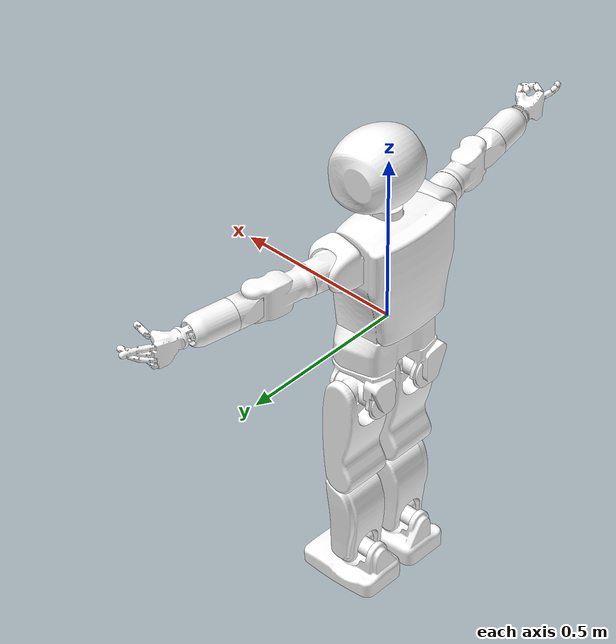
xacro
<robot xmlns:xacro="http://www.ros.org/wiki/xacro"
       name="ar601_description">

  <xacro:include filename="ar601_control.xacro"/>
  <xacro:include filename="ar601_sensors.xacro"/>
  <link
      name="Taz">
    <inertial>
      <origin
          xyz="0.0087164680405749 3.85670853000416E-07 -0.0516566059306696"
          rpy="0 0 0" />
      <mass
          value="4.126607417192" />
      <inertia
          ixx="0.0283228836767461"
          ixy="-8.93752190280835E-07"
          ixz="-0.00010746999267335"
          iyy="0.0119569214602084"
          iyz="-1.55646170538169E-07"
          izz="0.0338385738926162" />
    </inertial>
    <visual>
      <origin
          xyz="0 0 0"
          rpy="0 0 0" />
      <geometry>/>
      <mesh
          filename="package://ar601_description/meshes/Taz.STL" />
      </geometry>
      <material
          name="">
	<color
            rgba="1 1 1 1" />
      </material>
    </visual>
    <collision>
      <origin
          xyz="0 0 0"
          rpy="0 0 0" />
      <geometry>
	<mesh
            filename="package://ar601_description/meshes/Taz.STL" />
      </geometry>
    </collision>
  </link>
  <link
      name="LPelvis">
    <inertial>
      <origin
          xyz="-0.034371318905109 -0.000229607173654015 0.0539936820903349"
          rpy="0 0 0" />
      <mass
          value="0.907617218223575" />
      <inertia
          ixx="0.00151302645490848"
          ixy="-0.000198089046012854"
          ixz="0.000271473325446714"
          iyy="0.00413954333111072"
          iyz="-1.38946002019542E-05"
          izz="0.0037006905188415" />
    </inertial>
    <visual>
      <origin
          xyz="0 0 0"
          rpy="0 0 0" />
      <geometry>
	<mesh
            filename="package://ar601_description/meshes/LPelvis.STL" />
      </geometry>
      <material
          name="">
	<color
            rgba="1 1 1 1" />
      </material>
    </visual>
    <collision>
      <origin
          xyz="0 0 0"
          rpy="0 0 0" />
      <geometry>
	<mesh
            filename="package://ar601_description/meshes/LPelvis.STL" />
      </geometry>
    </collision>
  </link>
  <joint
      name="LHipYaw"
      type="revolute">
    <origin
	xyz="0.0276 0.088 -0.207"
	rpy="0 0 0" />
    <parent
	link="Taz" />
    <child
	link="LPelvis" />
    <axis
	xyz="0 0 1" />
    <limit
	lower="-1.57"
	upper="1.57"
	effort="1000"
	velocity="1" />
  </joint>
  <link
      name="LHip">
    <inertial>
      <origin
          xyz="-0.0136022505291461 -5.43789539786399E-09 1.636728808041E-10"
          rpy="0 0 0" />
      <mass
          value="0.75478838932295" />
      <inertia
          ixx="0.000785770667219093"
          ixy="-5.48395888230805E-10"
          ixz="7.71693891537235E-12"
          iyy="0.00126536743993476"
          iyz="-9.46401853755945E-11"
          izz="0.00156024816512556" />
    </inertial>
    <visual>
      <origin
          xyz="0 0 0"
          rpy="0 0 0" />
      <geometry>
	<mesh
            filename="package://ar601_description/meshes/LHip.STL" />
      </geometry>
      <material
          name="">
	<color
            rgba="1 1 1 1" />
      </material>
    </visual>
    <collision>
      <origin
          xyz="0 0 0"
          rpy="0 0 0" />
      <geometry>
	<mesh
            filename="package://ar601_description/meshes/LHip.STL" />
      </geometry>
    </collision>
  </link>
  <joint
      name="LHipRoll"
      type="revolute">
    <origin
	xyz="0 0 0"
	rpy="0 0 0" />
    <parent
	link="LPelvis" />
    <child
	link="LHip" />
    <axis
	xyz="1 0 0" />
    <limit
	lower="-1.57"
	upper="1.57"
	effort="1000"
	velocity="1" />
  </joint>
  <link
      name="LThigh">
    <inertial>
      <origin
          xyz="0.00788980825449852 0.00603649196198869 -0.170592699741382"
          rpy="0 0 0" />
      <mass
          value="4.04038507526498" />
      <inertia
          ixx="0.040671542742538"
          ixy="-6.6889392536114E-05"
          ixz="0.000378920244478984"
          iyy="0.0351762772755963"
          iyz="0.000877200144819809"
          izz="0.0117448419289042" />
    </inertial>
    <visual>
      <origin
          xyz="0 0 0"
          rpy="0 0 0" />
      <geometry>
	<mesh
            filename="package://ar601_description/meshes/LThigh.STL" />
      </geometry>
      <material
          name="">
	<color
            rgba="1 1 1 1" />
      </material>
    </visual>
    <collision>
      <origin
          xyz="0 0 0"
          rpy="0 0 0" />
      <geometry>
	<mesh
            filename="package://ar601_description/meshes/LThigh.STL" />
      </geometry>
    </collision>
  </link>
  <joint
      name="LHipPitch"
      type="revolute">
    <origin
	xyz="0 0 0"
	rpy="0 0 0" />
    <parent
	link="LHip" />
    <child
	link="LThigh" />
    <axis
	xyz="0 -1 0" />
    <limit
	lower="-1.57"
	upper="1.57"
	effort="1000"
	velocity="1" />
  </joint>
  <link
      name="LTibia">
    <inertial>
      <origin
          xyz="0.00249012228479518 0.0041119614089716 -0.153092062309401"
          rpy="0 0 0" />
      <mass
          value="2.44133941221641" />
      <inertia
          ixx="0.013860686253242"
          ixy="7.8857051441029E-05"
          ixz="0.000662790135047554"
          iyy="0.0113793958591796"
          iyz="4.21696983560829E-07"
          izz="0.00566075846057969" />
    </inertial>
    <visual>
      <origin
          xyz="0 0 0"
          rpy="0 0 0" />
      <geometry>
	<mesh
            filename="package://ar601_description/meshes/LTibia.STL" />
      </geometry>
      <material
          name="">
	<color
            rgba="1 1 1 1" />
      </material>
    </visual>
    <collision>
      <origin
          xyz="0 0 0"
          rpy="0 0 0" />
      <geometry>
	<mesh
            filename="package://ar601_description/meshes/LTibia.STL" />
      </geometry>
    </collision>
  </link>
  <joint
      name="LKneePitch"
      type="revolute">
    <origin
	xyz="0 0 -0.28"
	rpy="0 0 0" />
    <parent
	link="LThigh" />
    <child
	link="LTibia" />
    <axis
	xyz="0 -1 0" />
    <limit
	lower="-1.57"
	upper="1.57"
	effort="1000"
	velocity="1" />
  </joint>
  <link
      name="LAnkle">
    <inertial>
      <origin
          xyz="-0.00765936279171187 -0.00165000384026552 8.81063000335303E-11"
          rpy="0 0 0" />
      <mass
          value="0.297528291032888" />
      <inertia
          ixx="0.00016110997458844"
          ixy="-8.59904788640721E-11"
          ixz="1.39528105473871E-12"
          iyy="0.000283184317460514"
          iyz="-1.67631180179704E-11"
          izz="0.000346002622751276" />
    </inertial>
    <visual>
      <origin
          xyz="0 0 0"
          rpy="0 0 0" />
      <geometry>
	<mesh
            filename="package://ar601_description/meshes/LAnkle.STL" />
      </geometry>
      <material
          name="">
	<color
            rgba="1 1 1 1" />
      </material>
    </visual>
    <collision>
      <origin
          xyz="0 0 0"
          rpy="0 0 0" />
      <geometry>
	<mesh
            filename="package://ar601_description/meshes/LAnkle.STL" />
      </geometry>
    </collision>
  </link>
  <joint
      name="LAnklePitch"
      type="revolute">
    <origin
	xyz="0 0 -0.28"
	rpy="0 0 0" />
    <parent
	link="LTibia" />
    <child
	link="LAnkle" />
    <axis
	xyz="0 -1 0" />
    <limit
	lower="-1.57"
	upper="1.57"
	effort="1000"
	velocity="1" />
  </joint>
  <link
      name="LFoot">
    <inertial>
      <origin
          xyz="0.00823598827268202 -0.00391421978806694 -0.0723515382883442"
          rpy="0 0 0" />
      <mass
          value="2.20855084813123" />
      <inertia
          ixx="0.00541385375919762"
          ixy="0.000212557519756087"
          ixz="-0.00105786398979657"
          iyy="0.0129912758691653"
          iyz="-9.55071287499994E-05"
          izz="0.0152269717393632" />
    </inertial>
    <visual>
      <origin
          xyz="0 0 0"
          rpy="0 0 0" />
      <geometry>
	<mesh
            filename="package://ar601_description/meshes/LFoot.STL" />
      </geometry>
      <material
          name="">
	<color
            rgba="1 1 1 1" />
      </material>
    </visual>
    <collision>
      <origin
          xyz="0 0 0"
          rpy="0 0 0" />
      <geometry>
	<mesh
            filename="package://ar601_description/meshes/LFoot.STL" />
      </geometry>
    </collision>
  </link>
  <joint
      name="LAnkleRoll"
      type="revolute">
    <origin
	xyz="0 0 0"
	rpy="0 0 0" />
    <parent
	link="LAnkle" />
    <child
	link="LFoot" />
    <axis
	xyz="1 0 0" />
    <limit
	lower="-1.57"
	upper="1.57"
	effort="1000"
	velocity="1" />
  </joint>
  <link
      name="RPelvis">
    <inertial>
      <origin
          xyz="-0.0343648179278128 0.000226791015475861 0.0539960012507852"
          rpy="0 0 0" />
      <mass
          value="0.907706059628737" />
      <inertia
          ixx="0.00151312337799836"
          ixy="0.000197943950766502"
          ixz="0.000271619011045127"
          iyy="0.00413987707972169"
          iyz="1.3821391337205E-05"
          izz="0.00370098179044063" />
    </inertial>
    <visual>
      <origin
          xyz="0 0 0"
          rpy="0 0 0" />
      <geometry>
	<mesh
            filename="package://ar601_description/meshes/RPelvis.STL" />
      </geometry>
      <material
          name="">
	<color
            rgba="1 1 1 1" />
      </material>
    </visual>
    <collision>
      <origin
          xyz="0 0 0"
          rpy="0 0 0" />
      <geometry>
	<mesh
            filename="package://ar601_description/meshes/RPelvis.STL" />
      </geometry>
    </collision>
  </link>
  <joint
      name="RHipYaw"
      type="revolute">
    <origin
	xyz="0.0276 -0.088 -0.207"
	rpy="0 0 0" />
    <parent
	link="Taz" />
    <child
	link="RPelvis" />
    <axis
	xyz="0 0 1" />
    <limit
	lower="-1.57"
	upper="1.57"
	effort="1000"
	velocity="1" />
  </joint>
  <link
      name="RHip">
    <inertial>
      <origin
          xyz="-0.0136022505291464 -5.4370208613097E-09 1.90172072533912E-10"
          rpy="0 0 0" />
      <mass
          value="0.75478838932295" />
      <inertia
          ixx="0.000785770667219093"
          ixy="-5.48351778158391E-10"
          ixz="1.03888849444143E-11"
          iyy="0.00126537444158408"
          iyz="-1.43687244171716E-06"
          izz="0.00156024116347625" />
    </inertial>
    <visual>
      <origin
          xyz="0 0 0"
          rpy="0 0 0" />
      <geometry>
	<mesh
            filename="package://ar601_description/meshes/RHip.STL" />
      </geometry>
      <material
          name="">
	<color
            rgba="1 1 1 1" />
      </material>
    </visual>
    <collision>
      <origin
          xyz="0 0 0"
          rpy="0 0 0" />
      <geometry>
	<mesh
            filename="package://ar601_description/meshes/RHip.STL" />
      </geometry>
    </collision>
  </link>
  <joint
      name="RHipRoll"
      type="revolute">
    <origin
	xyz="0 0 0"
	rpy="0 0 0" />
    <parent
	link="RPelvis" />
    <child
	link="RHip" />
    <axis
	xyz="-1 0 0" />
    <limit
	lower="-1.57"
	upper="1.57"
	effort="1000"
	velocity="1" />
  </joint>
  <link
      name="RThigh">
    <inertial>
      <origin
          xyz="0.00772272761033092 -0.00686724885312454 -0.170568855502835"
          rpy="0 0 0" />
      <mass
          value="4.04038534709406" />
      <inertia
          ixx="0.040670791320802"
          ixy="6.80802427706007E-05"
          ixz="0.000406922231025443"
          iyy="0.0351842773506305"
          iyz="-0.000762991098254849"
          izz="0.0117376311927763" />
    </inertial>
    <visual>
      <origin
          xyz="0 0 0"
          rpy="0 0 0" />
      <geometry>
	<mesh
            filename="package://ar601_description/meshes/RThigh.STL" />
      </geometry>
      <material
          name="">
	<color
            rgba="1 1 1 1" />
      </material>
    </visual>
    <collision>
      <origin
          xyz="0 0 0"
          rpy="0 0 0" />
      <geometry>
	<mesh
            filename="package://ar601_description/meshes/RThigh.STL" />
      </geometry>
    </collision>
  </link>
  <joint
      name="RHipPitch"
      type="revolute">
    <origin
	xyz="0 0 0"
	rpy="0 0 0" />
    <parent
	link="RHip" />
    <child
	link="RThigh" />
    <axis
	xyz="0 -1 0" />
    <limit
	lower="-1.57"
	upper="1.57"
	effort="1000"
	velocity="1" />
  </joint>
  <link
      name="RTibia">
    <inertial>
      <origin
          xyz="0.00267723085691797 -0.00622197340898796 -0.153064754123779"
          rpy="0 0 0" />
      <mass
          value="2.44152987879846" />
      <inertia
          ixx="0.0138666862315174"
          ixy="-7.57887761403463E-05"
          ixz="0.000637796521429579"
          iyy="0.0113815029303437"
          iyz="2.71391450817102E-05"
          izz="0.00565753256056038" />
    </inertial>
    <visual>
      <origin
          xyz="0 0 0"
          rpy="0 0 0" />
      <geometry>
	<mesh
            filename="package://ar601_description/meshes/RTibia.STL" />
      </geometry>
      <material
          name="">
	<color
            rgba="1 1 1 1" />
      </material>
    </visual>
    <collision>
      <origin
          xyz="0 0 0"
          rpy="0 0 0" />
      <geometry>
	<mesh
            filename="package://ar601_description/meshes/RTibia.STL" />
      </geometry>
    </collision>
  </link>
  <joint
      name="RKneePitch"
      type="revolute">
    <origin
	xyz="0 0 -0.28"
	rpy="0 0 0" />
    <parent
	link="RThigh" />
    <child
	link="RTibia" />
    <axis
	xyz="0 -1 0" />
    <limit
	lower="-1.57"
	upper="1.57"
	effort="1000"
	velocity="1" />
  </joint>
  <link
      name="RAnkle">
    <inertial>
      <origin
          xyz="-0.0070943238193116 -0.00107859485789455 1.06826103518642E-10"
          rpy="0 0 0" />
      <mass
          value="0.297528291032887" />
      <inertia
          ixx="0.00016110997458844"
          ixy="-8.59826597337316E-11"
          ixz="1.81424985344595E-12"
          iyy="0.000283185808985535"
          iyz="-3.06092877658198E-07"
          izz="0.000346001131226255" />
    </inertial>
    <visual>
      <origin
          xyz="0 0 0"
          rpy="0 0 0" />
      <geometry>
	<mesh
            filename="package://ar601_description/meshes/RAnkle.STL" />
      </geometry>
      <material
          name="">
	<color
            rgba="1 1 1 1" />
      </material>
    </visual>
    <collision>
      <origin
          xyz="0 0 0"
          rpy="0 0 0" />
      <geometry>
	<mesh
            filename="package://ar601_description/meshes/RAnkle.STL" />
      </geometry>
    </collision>
  </link>
  <joint
      name="RAnklePitch"
      type="revolute">
    <origin
	xyz="0 0 -0.28"
	rpy="0 0 0" />
    <parent
	link="RTibia" />
    <child
	link="RAnkle" />
    <axis
	xyz="0 -1 0" />
    <limit
	lower="-1.57"
	upper="1.57"
	effort="1000"
	velocity="1" />
  </joint>
  <link
      name="RFoot">
    <inertial>
      <origin
          xyz="0.00880113569443676 0.0011856409171358 -0.0723516403172665"
          rpy="0 0 0" />
      <mass
          value="2.20854732042564" />
      <inertia
          ixx="0.00541384050409536"
          ixy="-0.000212565699097808"
          ixz="-0.00105784773940359"
          iyy="0.0129912149675411"
          iyz="9.5504506586418E-05"
          izz="0.0152269216785246" />
    </inertial>
    <visual>
      <origin
          xyz="0 0 0"
          rpy="0 0 0" />
      <geometry>
	<mesh
            filename="package://ar601_description/meshes/RFoot.STL" />
      </geometry>
      <material
          name="">
	<color
            rgba="1 1 1 1" />
      </material>
    </visual>
    <collision>
      <origin
          xyz="0 0 0"
          rpy="0 0 0" />
      <geometry>
	<mesh
            filename="package://ar601_description/meshes/RFoot.STL" />
      </geometry>
    </collision>
  </link>
  <joint
      name="RAnkleRoll"
      type="revolute">
    <origin
	xyz="0 0 0"
	rpy="0 0 0" />
    <parent
	link="RAnkle" />
    <child
	link="RFoot" />
    <axis
	xyz="1 0 0" />
    <limit
	lower="-1.57"
	upper="1.57"
	effort="1000"
	velocity="1" />
  </joint>
  <link
      name="Torso">
    <inertial>
      <origin
          xyz="-0.0112719843091738 2.12889798407322E-05 0.167608442453877"
          rpy="0 0 0" />
      <mass
          value="17.758981041176" />
      <inertia
          ixx="0.239950692372058"
          ixy="2.90429049036052E-05"
          ixz="-0.00893935308325801"
          iyy="0.214723962394711"
          iyz="2.72501023517018E-05"
          izz="0.173286366902963" />
    </inertial>
    <visual>
      <origin
          xyz="0 0 0"
          rpy="0 0 0" />
      <geometry>
	<mesh
            filename="package://ar601_description/meshes/Torso.STL" />
      </geometry>
      <material
          name="">
	<color
            rgba="1 1 1 1" />
      </material>
    </visual>
    <collision>
      <origin
          xyz="0 0 0"
          rpy="0 0 0" />
      <geometry>
	<mesh
            filename="package://ar601_description/meshes/Torso.STL" />
      </geometry>
    </collision>
  </link>
  <joint
      name="TorsoYaw"
      type="revolute">
    <origin
	xyz="0 0 0"
	rpy="0 0 0" />
    <parent
	link="Taz" />
    <child
	link="Torso" />
    <axis
	xyz="0 0 -1" />
    <limit
	lower="-1.57"
	upper="1.57"
	effort="1000"
	velocity="1" />
  </joint>
  <link
      name="Neck1">
    <inertial>
      <origin
          xyz="-0.0222927487404251 4.47895651753765E-05 0.0310409976295018"
          rpy="0 0 0" />
      <mass
          value="0.657320428434859" />
      <inertia
          ixx="0.00102025512184757"
          ixy="8.82154272831658E-09"
          ixz="-0.000299801674473731"
          iyy="0.00120134781263084"
          iyz="7.04080599073224E-10"
          izz="0.000718372081172033" />
    </inertial>
    <visual>
      <origin
          xyz="0 0 0"
          rpy="0 0 0" />
      <geometry>
	<mesh
            filename="package://ar601_description/meshes/Neck1.STL" />
      </geometry>
      <material
          name="">
	<color
            rgba="1 1 1 1" />
      </material>
    </visual>
    <collision>
      <origin
          xyz="0 0 0"
          rpy="0 0 0" />
      <geometry>
	<mesh
            filename="package://ar601_description/meshes/Neck1.STL" />
      </geometry>
    </collision>
  </link>
  <joint
      name="Neck1Pitch"
      type="revolute">
    <origin
	xyz="0.0415 0 0.271"
	rpy="0 0 0" />
    <parent
	link="Torso" />
    <child
	link="Neck1" />
    <axis
	xyz="0 1 0" />
    <limit
	lower="-1.57"
	upper="1.57"
	effort="1000"
	velocity="1" />
  </joint>
  <link
      name="Neck2">
    <inertial>
      <origin
          xyz="-9.38630904016163E-06 4.42165265520874E-05 -0.0162910790688592"
          rpy="0 0 0" />
      <mass
          value="0.0167205530633327" />
      <inertia
          ixx="6.21421984464676E-06"
          ixy="2.12611587878031E-21"
          ixz="3.26398680229957E-22"
          iyy="1.28553666419653E-05"
          iyz="-1.15346883750753E-21"
          izz="1.23400064727747E-05" />
    </inertial>
    <visual>
      <origin
          xyz="0 0 0"
          rpy="0 0 0" />
      <geometry>
	<mesh
            filename="package://ar601_description/meshes/Neck2.STL" />
      </geometry>
      <material
          name="">
	<color
            rgba="1 1 1 1" />
      </material>
    </visual>
    <collision>
      <origin
          xyz="0 0 0"
          rpy="0 0 0" />
      <geometry>
	<mesh
            filename="package://ar601_description/meshes/Neck2.STL" />
      </geometry>
    </collision>
  </link>
  <joint
      name="Neck2Yaw"
      type="revolute">
    <origin
	xyz="-0.033 0 0.129"
	rpy="0 0 0" />
    <parent
	link="Neck1" />
    <child
	link="Neck2" />
    <axis
	xyz="0 0 1" />
    <limit
	lower="-1.57"
	upper="1.57"
	effort="1000"
	velocity="1" />
  </joint>
  <link
      name="Head1">
    <inertial>
      <origin
          xyz="-9.38941181994821E-06 4.42605420928726E-05 -2.87270207621759E-13"
          rpy="0 0 0" />
      <mass
          value="0.140258674510404" />
      <inertia
          ixx="0.000255527506833601"
          ixy="1.91357970932129E-17"
          ixz="-2.67463391711265E-10"
          iyy="2.64614495249746E-05"
          iyz="1.23991920427338E-10"
          izz="0.000265796055755356" />
    </inertial>
    <visual>
      <origin
          xyz="0 0 0"
          rpy="0 0 0" />
      <geometry>
	<mesh
            filename="package://ar601_description/meshes/Head1.STL" />
      </geometry>
      <material
          name="">
	<color
            rgba="1 1 1 1" />
      </material>
    </visual>
    <collision>
      <origin
          xyz="0 0 0"
          rpy="0 0 0" />
      <geometry>
	<mesh
            filename="package://ar601_description/meshes/Head1.STL" />
      </geometry>
    </collision>
  </link>
  <joint
      name="Head1Roll"
      type="revolute">
    <origin
	xyz="0 0 0"
	rpy="0 0 0" />
    <parent
	link="Neck2" />
    <child
	link="Head1" />
    <axis
	xyz="-1 0 0" />
    <limit
	lower="-1.57"
	upper="1.57"
	effort="1000"
	velocity="1" />
  </joint>
  <link
      name="Head2">
    <inertial>
      <origin
          xyz="0.0367567218407244 6.13069479271224E-05 0.0741939345619121"
          rpy="0 0 0" />
      <mass
          value="5.51543814682702" />
      <inertia
          ixx="0.0328094469174202"
          ixy="9.24189424050106E-07"
          ixz="-0.0037700679389647"
          iyy="0.0336400080305931"
          iyz="-1.05545170878113E-07"
          izz="0.0379699861871773" />
    </inertial>
    <visual>
      <origin
          xyz="0 0 0"
          rpy="0 0 0" />
      <geometry>
	<mesh
            filename="package://ar601_description/meshes/Head2.STL" />
      </geometry>
      <material
          name="">
	<color
            rgba="1 1 1 1" />
      </material>
    </visual>
    <collision>
      <origin
          xyz="0 0 0"
          rpy="0 0 0" />
      <geometry>
	<mesh
            filename="package://ar601_description/meshes/Head2.STL" />
      </geometry>
    </collision>
  </link>
  <joint
      name="Head2Pitch"
      type="revolute">
    <origin
	xyz="0 0 0"
	rpy="0 0 0" />
    <parent
	link="Head1" />
    <child
	link="Head2" />
    <axis
	xyz="0 1 0" />
    <limit
	lower="-1.57"
	upper="1.57"
	effort="1000"
	velocity="1" />
  </joint>
  <link
      name="RShoulder1">
    <inertial>
      <origin
          xyz="0.0119949555242503 -0.0447411869608325 0.0124494864503562"
          rpy="0 0 0" />
      <mass
          value="0.702386181282745" />
      <inertia
          ixx="0.00106974111532826"
          ixy="-4.21603468717136E-05"
          ixz="-1.03125854224853E-05"
          iyy="0.00208349580288403"
          iyz="-1.38983012380038E-05"
          izz="0.00181178156982158" />
    </inertial>
    <visual>
      <origin
          xyz="0 0 0"
          rpy="0 0 0" />
      <geometry>
	<mesh
            filename="package://ar601_description/meshes/RShoulder1.STL" />
      </geometry>
      <material
          name="">
	<color
            rgba="1 1 1 1" />
      </material>
    </visual>
    <collision>
      <origin
          xyz="0 0 0"
          rpy="0 0 0" />
      <geometry>
	<mesh
            filename="package://ar601_description/meshes/RShoulder1.STL" />
      </geometry>
    </collision>
  </link>
  <joint
      name="RShoulder1Pitch"
      type="revolute">
    <origin
	xyz="0.00816234592944939 -0.122992201326346 0.254997422611944"
	rpy="0 0 0.184970710964327" />
    <parent
	link="Torso" />
    <child
	link="RShoulder1" />
    <axis
	xyz="0 1 0" />
    <limit
	lower="-1.57"
	upper="1.57"
	effort="1000"
	velocity="1" />
  </joint>
  <link
      name="RShoulder2">
    <inertial>
      <origin
          xyz="0.0512392226930269 -0.0264142906322848 0.00120771182202006"
          rpy="0 0 0" />
      <mass
          value="0.710524721499474" />
      <inertia
          ixx="0.00114546631945158"
          ixy="1.88298954427073E-05"
          ixz="-1.50894836583682E-06"
          iyy="0.000678757117060237"
          iyz="-1.74663088662221E-05"
          izz="0.00118255499414833" />
    </inertial>
    <visual>
      <origin
          xyz="0 0 0"
          rpy="0 0 0" />
      <geometry>
	<mesh
            filename="package://ar601_description/meshes/RShoulder2.STL" />
      </geometry>
      <material
          name="">
	<color
            rgba="1 1 1 1" />
      </material>
    </visual>
    <collision>
      <origin
          xyz="0 0 0"
          rpy="0 0 0" />
      <geometry>
	<mesh
            filename="package://ar601_description/meshes/RShoulder2.STL" />
      </geometry>
    </collision>
  </link>
  <joint
      name="RShoulder2Roll"
      type="revolute">
    <origin
	xyz="-0.05 -0.0698999999999998 0"
	rpy="0 0 -8.32667268468868E-17" />
    <parent
	link="RShoulder1" />
    <child
	link="RShoulder2" />
    <axis
	xyz="1 0 0" />
    <limit
	lower="-1.57"
	upper="1.57"
	effort="1000"
	velocity="1" />
  </joint>
  <link
      name="RShoulder3">
    <inertial>
      <origin
          xyz="-0.000285512379694923 -0.0754223955241937 0.000610317810293803"
          rpy="0 0 0" />
      <mass
          value="0.923986049465604" />
      <inertia
          ixx="0.00281485701688073"
          ixy="-2.01727821238318E-05"
          ixz="1.6062623282803E-06"
          iyy="0.0011174015837173"
          iyz="-2.74275836340887E-05"
          izz="0.0024862009088974" />
    </inertial>
    <visual>
      <origin
          xyz="0 0 0"
          rpy="0 0 0" />
      <geometry>
	<mesh
            filename="package://ar601_description/meshes/RShoulder3.STL" />
      </geometry>
      <material
          name="">
	<color
            rgba="1 1 1 1" />
      </material>
    </visual>
    <collision>
      <origin
          xyz="0 0 0"
          rpy="0 0 0" />
      <geometry>
	<mesh
            filename="package://ar601_description/meshes/RShoulder3.STL" />
      </geometry>
    </collision>
  </link>
  <joint
      name="RShoulder3Pitch"
      type="revolute">
    <origin
	xyz="0.0497500000000273 -0.0847 0"
	rpy="0 0 2.77555756156289E-17" />
    <parent
	link="RShoulder2" />
    <child
	link="RShoulder3" />
    <axis
	xyz="0 1 0" />
    <limit
	lower="-1.57"
	upper="1.57"
	effort="1000"
	velocity="1" />
  </joint>
  <link
      name="RElbow">
    <inertial>
      <origin
          xyz="-0.006486929404155 -0.0268889649873131 -0.0306512428440622"
          rpy="0 0 0" />
      <mass
          value="0.0670881837495098" />
      <inertia
          ixx="0.000109022839821225"
          ixy="6.73954004368903E-06"
          ixz="-1.6780213793162E-07"
          iyy="8.74563299787509E-05"
          iyz="-6.59809657822235E-07"
          izz="0.000124724907558027" />
    </inertial>
    <visual>
      <origin
          xyz="0 0 0"
          rpy="0 0 0" />
      <geometry>
        <mesh
            filename="package://ar601_description/meshes/RElbow.STL" />
      </geometry>
      <material
          name="">
        <color
            rgba="1 1 1 1" />
      </material>
    </visual>
    <collision>
      <origin
          xyz="0 0 0"
          rpy="0 0 0" />
      <geometry>
        <mesh
            filename="package://ar601_description/meshes/RElbow.STL" />
      </geometry>
    </collision>
  </link>
  <joint
      name="RElbowYaw"
      type="revolute">
    <origin
	xyz="0.00999999999999842 -0.148500000000001 0.0305"
	rpy="0 0 0" />
    <parent
	link="RShoulder3" />
    <child
	link="RElbow" />
    <axis
	xyz="0 0 -1" />
    <limit
	lower="-1.57"
	upper="1.57"
	effort="1000"
	velocity="1" />
  </joint>
  <link
      name="RArm">
    <inertial>
      <origin
          xyz="3.39088911727181E-07 -0.0546541724381554 0.000345780744001489"
          rpy="0 0 0" />
      <mass
          value="0.698821476800581" />
      <inertia
          ixx="0.00106001711630364"
          ixy="-6.29306886417954E-09"
          ixz="2.13066980178013E-09"
          iyy="0.000705561415630704"
          iyz="3.04202034019122E-06"
          izz="0.00107112324627601" />
    </inertial>
    <visual>
      <origin
          xyz="0 0 0"
          rpy="0 0 0" />
      <geometry>
        <mesh
            filename="package://ar601_description/meshes/RArm.STL" />
      </geometry>
      <material
          name="">
        <color
            rgba="1 1 1 1" />
      </material>
    </visual>
    <collision>
      <origin
          xyz="0 0 0"
          rpy="0 0 0" />
      <geometry>
        <mesh
            filename="package://ar601_description/meshes/RArm.STL" />
      </geometry>
    </collision>
  </link>
  <joint
      name="RArmPitch"
      type="revolute">
    <origin
	xyz="-0.00999999999999997 -0.083 -0.0305"
	rpy="0 0 0" />
    <parent
	link="RElbow" />
    <child
	link="RArm" />
    <axis
	xyz="0 1 0" />
    <limit
	lower="-1.57"
	upper="1.57"
	effort="1000"
	velocity="1" />
  </joint>
  <link
      name="RWrist1">
    <inertial>
      <origin
          xyz="-8.69257804625434E-09 -1.11022302462516E-16 -8.69257799074319E-09"
          rpy="0 0 0" />
      <mass
          value="0.00354841244692995" />
      <inertia
          ixx="2.55224026399827E-07"
          ixy="-2.77348371395428E-13"
          ixz="-2.68188875731839E-19"
          iyy="4.81502399048945E-07"
          iyz="2.77348371671677E-13"
          izz="2.55224026399827E-07" />
    </inertial>
    <visual>
      <origin
          xyz="0 0 0"
          rpy="0 0 0" />
      <geometry>
        <mesh
            filename="package://ar601_description/meshes/RWrist1.STL" />
      </geometry>
      <material
          name="">
        <color
            rgba="1 1 1 1" />
      </material>
    </visual>
    <collision>
      <origin
          xyz="0 0 0"
          rpy="0 0 0" />
      <geometry>
        <mesh
            filename="package://ar601_description/meshes/RWrist1.STL" />
      </geometry>
    </collision>
  </link>
  <joint
      name="RWrist1Roll"
      type="revolute">
    <origin
	xyz="0 -0.123999999999999 0"
	rpy="0 0 0" />
    <parent
	link="RArm" />
    <child
	link="RWrist1" />
    <axis
	xyz="-1 0 0" />
    <limit
	lower="-1.57"
	upper="1.57"
	effort="1000"
	velocity="1" />
  </joint>
  <link
      name="RWrist2">
    <inertial>
      <origin
          xyz="0.00429276741230494 -0.0960139603200557 -0.00171644178916985"
          rpy="0 0 0" />
      <mass
          value="0.18388543210187" />
      <inertia
          ixx="0.000443455502726644"
          ixy="-9.44450101813354E-06"
          ixz="8.86157039488424E-06"
          iyy="0.000170192928316651"
          iyz="-1.34640013721051E-06"
          izz="0.000473552065615098" />
    </inertial>
    <visual>
      <origin
          xyz="0 0 0"
          rpy="0 0 0" />
      <geometry>
        <mesh
            filename="package://ar601_description/meshes/RWrist2.STL" />
      </geometry>
      <material
          name="">
        <color
            rgba="1 1 1 1" />
      </material>
    </visual>
    <collision>
      <origin
          xyz="0 0 0"
          rpy="0 0 0" />
      <geometry>
        <mesh
            filename="package://ar601_description/meshes/RWrist2.STL" />
      </geometry>
    </collision>
  </link>
  <joint
      name="RWrist2Yaw"
      type="revolute">
    <origin
	xyz="0 0 0"
	rpy="0 0 0" />
    <parent
	link="RWrist1" />
    <child
	link="RWrist2" />
    <axis
	xyz="0 0 -1" />
    <limit
	lower="-1.57"
	upper="1.57"
	effort="1000"
	velocity="1" />
  </joint>
  <link
      name="LShoulder1">
    <inertial>
      <origin
          xyz="0.0119102663222135 0.044680169164134 0.0125101838399666"
          rpy="0 0 0" />
      <mass
          value="0.703972240590069" />
      <inertia
          ixx="0.00106958029541502"
          ixy="4.31046051165897E-05"
          ixz="-1.25610545954009E-05"
          iyy="0.00208834082537485"
          iyz="1.35987436285721E-05"
          izz="0.00181405089345679" />
    </inertial>
    <visual>
      <origin
          xyz="0 0 0"
          rpy="0 0 0" />
      <geometry>
        <mesh
            filename="package://ar601_description/meshes/LShoulder1.STL" />
      </geometry>
      <material
          name="">
        <color
            rgba="1 1 1 1" />
      </material>
    </visual>
    <collision>
      <origin
          xyz="0 0 0"
          rpy="0 0 0" />
      <geometry>
        <mesh
            filename="package://ar601_description/meshes/LShoulder1.STL" />
      </geometry>
    </collision>
  </link>
  <joint
      name="LShoulder1Pitch"
      type="revolute">
    <origin
	xyz="0.00816234544717374 0.123080634470917 0.254997422732666"
	rpy="0 0 -0.184970710964332" />
    <parent
	link="Torso" />
    <child
	link="LShoulder1" />
    <axis
	xyz="0 -1 0" />
    <limit
	lower="-1.57"
	upper="1.57"
	effort="1000"
	velocity="1" />
  </joint>
  <link
      name="LShoulder2">
    <inertial>
      <origin
          xyz="0.0512392400737466 0.0264143370365393 0.0012076909283113"
          rpy="0 0 0" />
      <mass
          value="0.710520459771819" />
      <inertia
          ixx="0.00114546112171041"
          ixy="-1.88293434343879E-05"
          ixz="-1.50917387927524E-06"
          iyy="0.000678754020646653"
          iyz="1.74648361634084E-05"
          izz="0.0011825421207912" />
    </inertial>
    <visual>
      <origin
          xyz="0 0 0"
          rpy="0 0 0" />
      <geometry>
        <mesh
            filename="package://ar601_description/meshes/LShoulder2.STL" />
      </geometry>
      <material
          name="">
        <color
            rgba="1 1 1 1" />
      </material>
    </visual>
    <collision>
      <origin
          xyz="0 0 0"
          rpy="0 0 0" />
      <geometry>
        <mesh
            filename="package://ar601_description/meshes/LShoulder2.STL" />
      </geometry>
    </collision>
  </link>
  <joint
      name="LShoulder2Roll"
      type="revolute">
    <origin
	xyz="-0.05 0.0709000000000001 0"
	rpy="0 0 -3.05311331771918E-16" />
    <parent
	link="LShoulder1" />
    <child
	link="LShoulder2" />
    <axis
	xyz="1 0 0" />
    <limit
	lower="-1.57"
	upper="1.57"
	effort="1000"
	velocity="1" />
  </joint>
  <link
      name="LShoulder3">
    <inertial>
      <origin
          xyz="-0.000285011372341666 0.0754226804882471 0.000610240061953593"
          rpy="0 0 0" />
      <mass
          value="0.924000387078446" />
      <inertia
          ixx="0.00281486815062724"
          ixy="2.01811427412036E-05"
          ixz="1.60698461086971E-06"
          iyy="0.001117411560517"
          iyz="2.74171545891919E-05"
          izz="0.00248622929669194" />
    </inertial>
    <visual>
      <origin
          xyz="0 0 0"
          rpy="0 0 0" />
      <geometry>
        <mesh
            filename="package://ar601_description/meshes/LShoulder3.STL" />
      </geometry>
      <material
          name="">
        <color
            rgba="1 1 1 1" />
      </material>
    </visual>
    <collision>
      <origin
          xyz="0 0 0"
          rpy="0 0 0" />
      <geometry>
        <mesh
            filename="package://ar601_description/meshes/LShoulder3.STL" />
      </geometry>
    </collision>
  </link>
  <joint
      name="LShoulder3Pitch"
      type="revolute">
    <origin
	xyz="0.0497500000000278 0.0847 0"
	rpy="0 0 -4.44089209850063E-16" />
    <parent
	link="LShoulder2" />
    <child
	link="LShoulder3" />
    <axis
	xyz="0 -1 0" />
    <limit
	lower="-1.57"
	upper="1.57"
	effort="1000"
	velocity="1" />
  </joint>
  <link
      name="LElbow">
    <inertial>
      <origin
          xyz="-0.00649287644593347 0.0268919667432966 -0.0306567593186295"
          rpy="0 0 0" />
      <mass
          value="0.0670906507056264" />
      <inertia
          ixx="0.000109035805023861"
          ixy="-6.74242041854827E-06"
          ixz="-1.64115768786618E-07"
          iyy="8.74615016718308E-05"
          iyz="6.51814067227342E-07"
          izz="0.000124731363697923" />
    </inertial>
    <visual>
      <origin
          xyz="0 0 0"
          rpy="0 0 0" />
      <geometry>
        <mesh
            filename="package://ar601_description/meshes/LElbow.STL" />
      </geometry>
      <material
          name="">
        <color
            rgba="1 1 1 1" />
      </material>
    </visual>
    <collision>
      <origin
          xyz="0 0 0"
          rpy="0 0 0" />
      <geometry>
        <mesh
            filename="package://ar601_description/meshes/LElbow.STL" />
      </geometry>
    </collision>
  </link>
  <joint
      name="LElbowYaw"
      type="revolute">
    <origin
	xyz="0.00999999999999802 0.148500000000001 0.0304999999999991"
	rpy="0 0 -2.77555756156289E-17" />
    <parent
	link="LShoulder3" />
    <child
	link="LElbow" />
    <axis
	xyz="0 0 -1" />
    <limit
	lower="-1.57"
	upper="1.57"
	effort="1000"
	velocity="1" />
  </joint>
  <link
      name="LArm">
    <inertial>
      <origin
          xyz="4.78492893016269E-07 0.0546540523030487 0.000345579805242302"
          rpy="0 0 0" />
      <mass
          value="0.698818860634218" />
      <inertia
          ixx="0.00106001756026176"
          ixy="1.21255797264129E-08"
          ixz="9.70520460653861E-10"
          iyy="0.000705558851650984"
          iyz="-3.04830728342975E-06"
          izz="0.00107111332490696" />
    </inertial>
    <visual>
      <origin
          xyz="0 0 0"
          rpy="0 0 0" />
      <geometry>
        <mesh
            filename="package://ar601_description/meshes/LArm.STL" />
      </geometry>
      <material
          name="">
        <color
            rgba="1 1 1 1" />
      </material>
    </visual>
    <collision>
      <origin
          xyz="0 0 0"
          rpy="0 0 0" />
      <geometry>
        <mesh
            filename="package://ar601_description/meshes/LArm.STL" />
      </geometry>
    </collision>
  </link>
  <joint
      name="LArmPitch"
      type="revolute">
    <origin
	xyz="-0.0100000000000001 0.083 -0.0305000000000001"
	rpy="0 0 -2.77555756156289E-17" />
    <parent
	link="LElbow" />
    <child
	link="LArm" />
    <axis
	xyz="0 -1 0" />
    <limit
	lower="-1.57"
	upper="1.57"
	effort="1000"
	velocity="1" />
  </joint>
  <link
      name="LWrist1">
    <inertial>
      <origin
          xyz="8.69257799074319E-09 1.11022302462516E-16 -8.69257799074319E-09"
          rpy="0 0 0" />
      <mass
          value="0.00354841244692995" />
      <inertia
          ixx="2.55224026399828E-07"
          ixy="-2.77348371640273E-13"
          ixz="2.68436040677386E-19"
          iyy="4.81502399048944E-07"
          iyz="-2.77348371730433E-13"
          izz="2.55224026399827E-07" />
    </inertial>
    <visual>
      <origin
          xyz="0 0 0"
          rpy="0 0 0" />
      <geometry>
        <mesh
            filename="package://ar601_description/meshes/LWrist1.STL" />
      </geometry>
      <material
          name="">
        <color
            rgba="1 1 1 1" />
      </material>
    </visual>
    <collision>
      <origin
          xyz="0 0 0"
          rpy="0 0 0" />
      <geometry>
        <mesh
            filename="package://ar601_description/meshes/LWrist1.STL" />
      </geometry>
    </collision>
  </link>
  <joint
      name="LWrist1Roll"
      type="revolute">
    <origin
	xyz="0 0.124000000000002 0"
	rpy="2.95274063348659E-17 1.22003544019986E-16 -2.77555756156289E-17" />
    <parent
	link="LArm" />
    <child
	link="LWrist1" />
    <axis
	xyz="-1 0 0" />
    <limit
	lower="-1.57"
	upper="1.57"
	effort="1000"
	velocity="1" />
  </joint>
  <link
      name="LWrist2">
    <inertial>
      <origin
          xyz="0.00820615855961437 0.0984359940324694 -0.0017726428283672"
          rpy="0 0 0" />
      <mass
          value="0.183887662117978" />
      <inertia
          ixx="0.000493899030243636"
          ixy="4.70054866815837E-05"
          ixz="7.18476072797436E-06"
          iyy="0.000202822488346785"
          iyz="4.09807448480365E-06"
          izz="0.000554731006634576" />
    </inertial>
    <visual>
      <origin
          xyz="0 0 0"
          rpy="0 0 0" />
      <geometry>
        <mesh
            filename="package://ar601_description/meshes/LWrist2.STL" />
      </geometry>
      <material
          name="">
        <color
            rgba="1 1 1 1" />
      </material>
    </visual>
    <collision>
      <origin
          xyz="0 0 0"
          rpy="0 0 0" />
      <geometry>
        <mesh
            filename="package://ar601_description/meshes/LWrist2.STL" />
      </geometry>
    </collision>
  </link>
  <joint
      name="LWrist2Yaw"
      type="revolute">
    <origin
	xyz="0 0 0"
	rpy="0 2.46519032881566E-32 -2.77555756156289E-17" />
    <parent
	link="LWrist1" />
    <child
	link="LWrist2" />
    <axis
	xyz="0 0 -1" />

    <limit
	lower="-1.57"
	upper="1.57"
	effort="1000"
	velocity="1" />
  </joint>
</robot>
